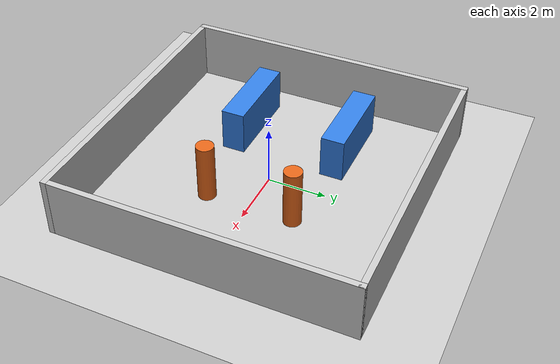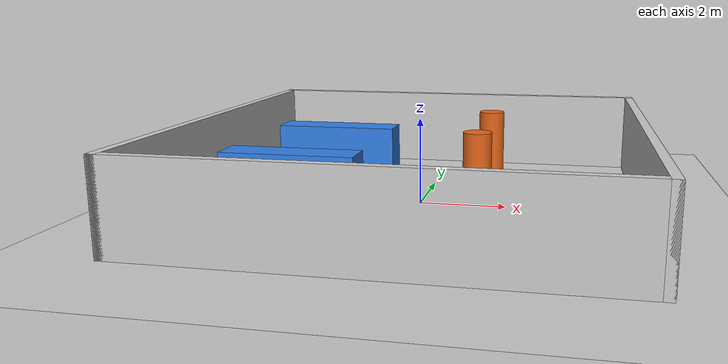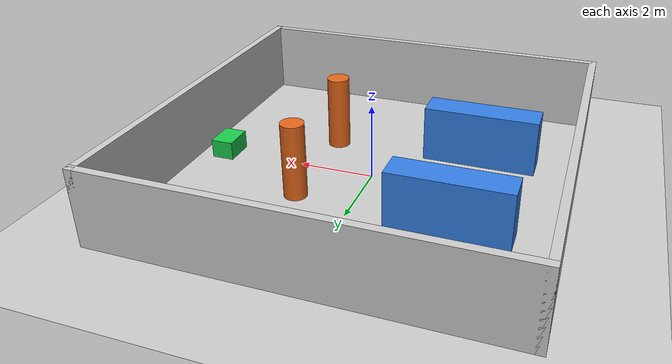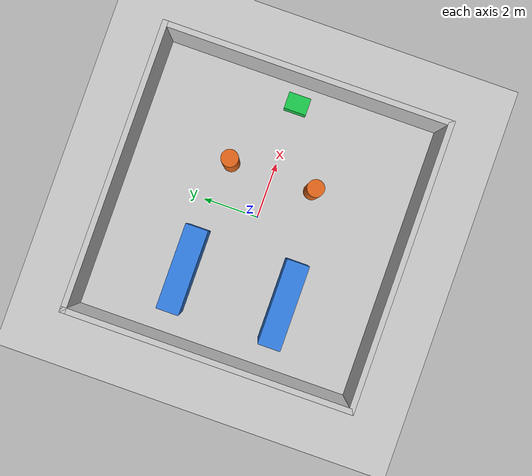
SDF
<?xml version="1.0" ?>
<sdf version="1.6">
  <world name="warehouse_obstacle_world">

    <!-- Physics settings for realistic AMR navigation -->
    <physics name="default_physics" default="0" type="ode">
      <max_step_size>0.001</max_step_size>
      <real_time_factor>1.0</real_time_factor>
      <real_time_update_rate>1000.0</real_time_update_rate>
      <ode>
        <solver>
          <type>quick</type>
          <iters>50</iters>
          <sor>1.3</sor>
        </solver>
        <constraints>
          <cfm>0.00001</cfm>
          <erp>0.2</erp>
          <contact_max_correcting_vel>100.0</contact_max_correcting_vel>
          <contact_surface_layer>0.001</contact_surface_layer>
        </constraints>
      </ode>
    </physics>

    <!-- Sun Light -->
    <include>
      <uri>model://sun</uri>
    </include>

    <!-- Ground Plane -->
    <include>
      <uri>model://ground_plane</uri>
    </include>

    <!-- WAREHOUSE BOUNDARY WALLS (10m x 10m enclosure) -->
    <!-- North Wall -->
    <model name="wall_north">
      <static>true</static>
      <pose>0 5.0 1.0 0 0 0</pose>
      <link name="link">
        <collision name="collision">
          <geometry><box><size>10.2 0.2 2.0</size></box></geometry>
        </collision>
        <visual name="visual">
          <geometry><box><size>10.2 0.2 2.0</size></box></geometry>
          <material><ambient>0.7 0.7 0.7 1</ambient><diffuse>0.8 0.8 0.8 1</diffuse></material>
        </visual>
      </link>
    </model>

    <!-- South Wall -->
    <model name="wall_south">
      <static>true</static>
      <pose>0 -5.0 1.0 0 0 0</pose>
      <link name="link">
        <collision name="collision">
          <geometry><box><size>10.2 0.2 2.0</size></box></geometry>
        </collision>
        <visual name="visual">
          <geometry><box><size>10.2 0.2 2.0</size></box></geometry>
          <material><ambient>0.7 0.7 0.7 1</ambient><diffuse>0.8 0.8 0.8 1</diffuse></material>
        </visual>
      </link>
    </model>

    <!-- East Wall -->
    <model name="wall_east">
      <static>true</static>
      <pose>5.0 0 1.0 0 0 1.570796</pose>
      <link name="link">
        <collision name="collision">
          <geometry><box><size>10.2 0.2 2.0</size></box></geometry>
        </collision>
        <visual name="visual">
          <geometry><box><size>10.2 0.2 2.0</size></box></geometry>
          <material><ambient>0.7 0.7 0.7 1</ambient><diffuse>0.8 0.8 0.8 1</diffuse></material>
        </visual>
      </link>
    </model>

    <!-- West Wall -->
    <model name="wall_west">
      <static>true</static>
      <pose>-5.0 0 1.0 0 0 1.570796</pose>
      <link name="link">
        <collision name="collision">
          <geometry><box><size>10.2 0.2 2.0</size></box></geometry>
        </collision>
        <visual name="visual">
          <geometry><box><size>10.2 0.2 2.0</size></box></geometry>
          <material><ambient>0.7 0.7 0.7 1</ambient><diffuse>0.8 0.8 0.8 1</diffuse></material>
        </visual>
      </link>
    </model>

    <!-- WAREHOUSE RACKS & OBSTACLES                    -->
    <!-- Storage Rack Row A -->
    <model name="storage_rack_a">
      <static>true</static>
      <pose>-2.5 1.8 0.75 0 0 0</pose>
      <link name="link">
        <collision name="collision">
          <geometry><box><size>3.0 0.8 1.5</size></box></geometry>
        </collision>
        <visual name="visual">
          <geometry><box><size>3.0 0.8 1.5</size></box></geometry>
          <material><ambient>0.2 0.4 0.8 1</ambient><diffuse>0.2 0.5 0.9 1</diffuse></material>
        </visual>
      </link>
    </model>

    <!-- Storage Rack Row B -->
    <model name="storage_rack_b">
      <static>true</static>
      <pose>-2.5 -1.8 0.75 0 0 0</pose>
      <link name="link">
        <collision name="collision">
          <geometry><box><size>3.0 0.8 1.5</size></box></geometry>
        </collision>
        <visual name="visual">
          <geometry><box><size>3.0 0.8 1.5</size></box></geometry>
          <material><ambient>0.2 0.4 0.8 1</ambient><diffuse>0.2 0.5 0.9 1</diffuse></material>
        </visual>
      </link>
    </model>

    <!-- Central Pillar 1 -->
    <model name="pillar_center_1">
      <static>true</static>
      <pose>1.5 1.5 1.0 0 0 0</pose>
      <link name="link">
        <collision name="collision">
          <geometry><cylinder><radius>0.3</radius><length>2.0</length></cylinder></geometry>
        </collision>
        <visual name="visual">
          <geometry><cylinder><radius>0.3</radius><length>2.0</length></cylinder></geometry>
          <material><ambient>0.8 0.3 0.1 1</ambient><diffuse>0.9 0.4 0.1 1</diffuse></material>
        </visual>
      </link>
    </model>

    <!-- Central Pillar 2 -->
    <model name="pillar_center_2">
      <static>true</static>
      <pose>1.5 -1.5 1.0 0 0 0</pose>
      <link name="link">
        <collision name="collision">
          <geometry><cylinder><radius>0.3</radius><length>2.0</length></cylinder></geometry>
        </collision>
        <visual name="visual">
          <geometry><cylinder><radius>0.3</radius><length>2.0</length></cylinder></geometry>
          <material><ambient>0.8 0.3 0.1 1</ambient><diffuse>0.9 0.4 0.1 1</diffuse></material>
        </visual>
      </link>
    </model>

    <!-- Charging Dock Station Base -->
    <model name="docking_station">
      <static>true</static>
      <pose>4.2 0.0 0.25 0 0 0</pose>
      <link name="link">
        <collision name="collision">
          <geometry><box><size>0.6 0.8 0.5</size></box></geometry>
        </collision>
        <visual name="visual">
          <geometry><box><size>0.6 0.8 0.5</size></box></geometry>
          <material><ambient>0.1 0.7 0.3 1</ambient><diffuse>0.1 0.8 0.3 1</diffuse></material>
        </visual>
      </link>
    </model>

    <!-- Scene Lighting -->
    <gui fullscreen='0'>
      <camera name='user_camera'>
        <pose>0.0 -7.5 7.0 0 0.8 1.57</pose>
        <view_controller>orbit</view_controller>
      </camera>
    </gui>

  </world>
</sdf>
